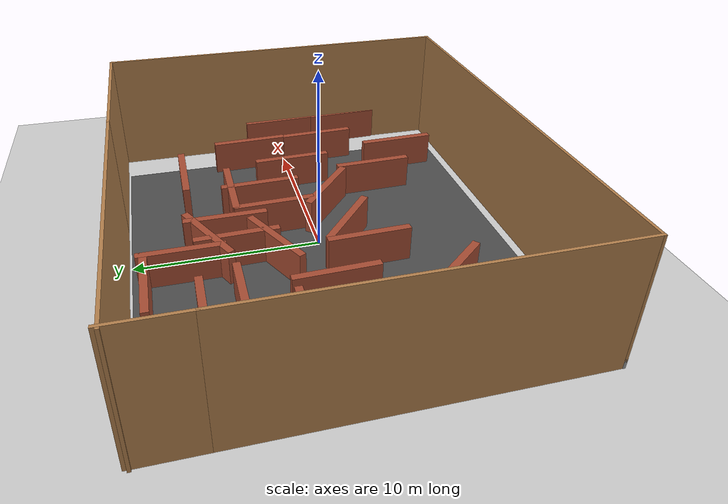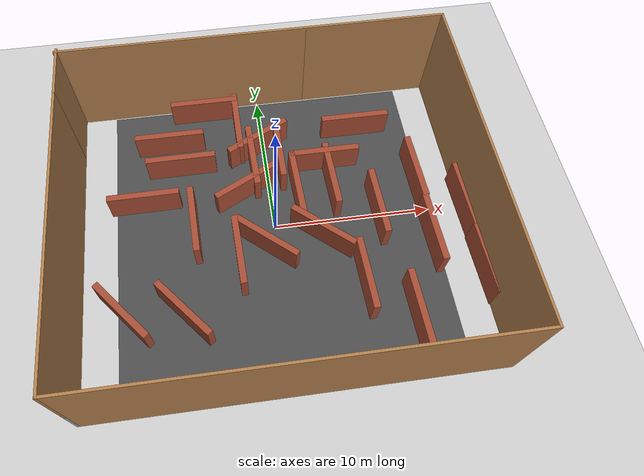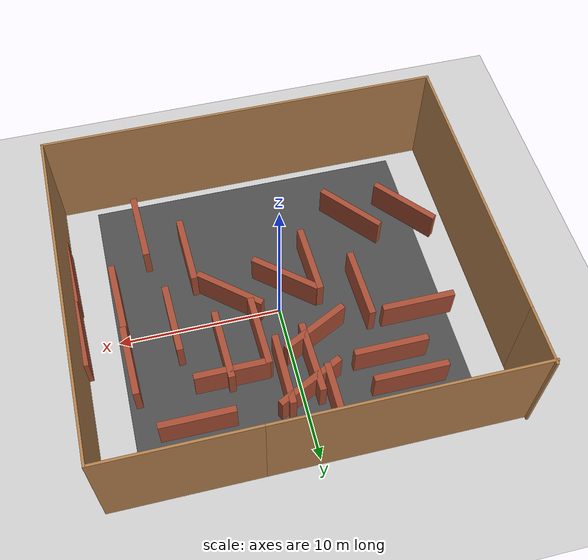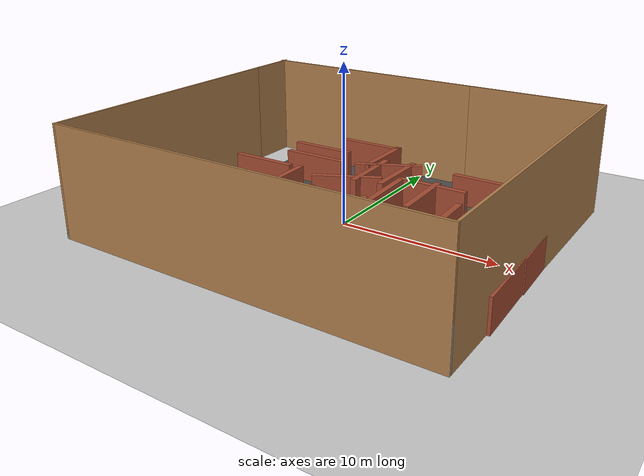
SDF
<sdf version="1.6">
 <world name="default">
  <light name="sun" type="directional">
   <pose>0 0 10 0 -0 0</pose>
   <diffuse>0.8 0.8 0.8 1</diffuse>
   <specular>0.2 0.2 0.2 1</specular>
   <attenuation>
    <range>1000</range>
    <constant>0.9</constant>
    <linear>0.01</linear>
    <quadratic>0.001</quadratic>
   </attenuation>
   <direction>-0.5 0.1 -0.9</direction>
  </light>
  <model name="ground_plane">
   <static>1</static>
   <link name="link">
    <collision name="collision">
     <geometry><plane><normal>0 0 1</normal><size>100 100</size></plane></geometry>
     <surface><friction><ode><mu>100</mu><mu2>50</mu2></ode></friction></surface>
    </collision>
    <visual name="visual">
     <cast_shadows>0</cast_shadows>
     <geometry><plane><normal>0 0 1</normal><size>100 100</size></plane></geometry>
     <material>
      <script><uri>file://media/materials/scripts/gazebo.material</uri><name>Gazebo/Grey</name></script>
     </material>
    </visual>
   </link>
  </model>
  <model name="asphalt_plane">
   <static>1</static>
   <link name="link">
    <collision name="collision"><geometry><box><size>20 20 0.1</size></box></geometry></collision>
    <visual name="visual">
     <cast_shadows>0</cast_shadows>
     <geometry><box><size>20 20 0.1</size></box></geometry>
     <material>
      <script>
       <uri>model://asphalt_plane/materials/scripts</uri>
       <uri>model://asphalt_plane/materials/textures</uri>
       <name>vrc/asphalt</name>
      </script>
     </material>
    </visual>
   </link>
  </model>
  <physics name="default_physics" default="0" type="ode">
   <ode>
    <solver>
     <type>quick</type>
     <iters>10</iters>
     <sor>1.3</sor>
     <use_dynamic_moi_rescaling>0</use_dynamic_moi_rescaling>
    </solver>
    <constraints>
     <cfm>0</cfm>
     <erp>0.2</erp>
     <contact_max_correcting_vel>100</contact_max_correcting_vel>
     <contact_surface_layer>0.001</contact_surface_layer>
    </constraints>
   </ode>
   <max_step_size>0.004</max_step_size>
   <real_time_factor>1</real_time_factor>
   <real_time_update_rate>250</real_time_update_rate>
  </physics>
  <gravity>0 0 -9.8066</gravity>
  <magnetic_field>6e-06 2.3e-05 -4.2e-05</magnetic_field>
  <atmosphere type="adiabatic"/>
  <scene><ambient>0.4 0.4 0.4 1</ambient><background>0.7 0.7 0.7 1</background><shadows>1</shadows></scene>
  <spherical_coordinates>
   <surface_model>EARTH_WGS84</surface_model>
   <latitude_deg>0</latitude_deg>
   <longitude_deg>0</longitude_deg>
   <elevation>0</elevation>
   <heading_deg>0</heading_deg>
  </spherical_coordinates>
  <model name="A_walls">
   <pose>3.82989 4.22347 0 0 -0 0</pose>
   <link name="Wall_1">
    <collision name="Wall_1_Collision">
     <geometry><box><size>4.5 0.4 2</size></box></geometry>
     <pose>0 0 1 0 -0 0</pose>
    </collision>
    <visual name="Wall_1_Visual">
     <pose>0 0 1 0 -0 0</pose>
     <geometry><box><size>4.5 0.4 2</size></box></geometry>
     <material>
      <script><uri>file://media/materials/scripts/gazebo.material</uri><name>Gazebo/Bricks</name></script>
      <ambient>1 1 1 1</ambient>
     </material>
     <meta><layer>0</layer></meta>
    </visual>
   </link>
   <link name="Wall_2">
    <collision name="Wall_2_Collision">
     <geometry><box><size>4.5 0.4 2</size></box></geometry>
     <pose>0 0 1 0 -0 0</pose>
    </collision>
    <visual name="Wall_2_Visual">
     <pose>0 0 1 0 -0 0</pose>
     <geometry><box><size>4.5 0.4 2</size></box></geometry>
     <material>
      <script><uri>file://media/materials/scripts/gazebo.material</uri><name>Gazebo/Bricks</name></script>
      <ambient>1 1 1 1</ambient>
     </material>
     <meta><layer>0</layer></meta>
    </visual>
    <pose>2.5 2.5 0 0 -0 0</pose>
   </link>
   <static>1</static>
  </model>
  <model name="wall_all">
   <pose>-0.0773 -0.08909 0 0 -0 0</pose>
   <link name="Wall_10">
    <collision name="Wall_10_Collision">
     <geometry><box><size>17.75 0.15 7</size></box></geometry>
     <pose>0 0 3.5 0 -0 0</pose>
    </collision>
    <visual name="Wall_10_Visual">
     <pose>0 0 3.5 0 -0 0</pose>
     <geometry><box><size>17.75 0.15 7</size></box></geometry>
     <material>
      <script><uri>file://media/materials/scripts/gazebo.material</uri><name>Gazebo/Wood</name></script>
      <ambient>1 1 1 1</ambient>
     </material>
     <meta><layer>0</layer></meta>
    </visual>
    <pose>-12.115 -1.675 0 0 -0 1.5708</pose>
   </link>
   <link name="Wall_11">
    <collision name="Wall_11_Collision">
     <geometry><box><size>3.5 0.15 7</size></box></geometry>
     <pose>0 0 3.5 0 -0 0</pose>
    </collision>
    <visual name="Wall_11_Visual">
     <pose>0 0 3.5 0 -0 0</pose>
     <geometry><box><size>3.5 0.15 7</size></box></geometry>
     <material>
      <script><uri>file://media/materials/scripts/gazebo.material</uri><name>Gazebo/Wood</name></script>
      <ambient>1 1 1 1</ambient>
     </material>
     <meta><layer>0</layer></meta>
    </visual>
    <pose>-12.115 8.8 0 0 -0 1.5708</pose>
   </link>
   <link name="Wall_2">
    <collision name="Wall_2_Collision">
     <geometry><box><size>15.703 0.15 7</size></box></geometry>
     <pose>0 0 3.5 0 -0 0</pose>
    </collision>
    <visual name="Wall_2_Visual">
     <pose>0 0 3.5 0 -0 0</pose>
     <geometry><box><size>15.703 0.15 7</size></box></geometry>
     <material>
      <script><uri>file://media/materials/scripts/gazebo.material</uri><name>Gazebo/Wood</name></script>
      <ambient>1 1 1 1</ambient>
     </material>
     <meta><layer>0</layer></meta>
    </visual>
    <pose>-4.4485 10.297 0 0 -0 3.14159</pose>
   </link>
   <link name="Wall_5">
    <collision name="Wall_5_Collision">
     <geometry><box><size>9.04652 0.15 7</size></box></geometry>
     <pose>0 0 3.5 0 -0 0</pose>
    </collision>
    <visual name="Wall_5_Visual">
     <pose>0 0 3.5 0 -0 0</pose>
     <geometry><box><size>9.04652 0.15 7</size></box></geometry>
     <material>
      <script><uri>file://media/materials/scripts/gazebo.material</uri><name>Gazebo/Wood</name></script>
      <ambient>1 1 1 1</ambient>
     </material>
     <meta><layer>0</layer></meta>
    </visual>
    <pose>7.7765 10.297 0 0 -0 0</pose>
   </link>
   <link name="Wall_6">
    <collision name="Wall_6_Collision">
     <geometry><box><size>20.9219 0.15 7</size></box></geometry>
     <pose>0 0 3.5 0 -0 0</pose>
    </collision>
    <visual name="Wall_6_Visual">
     <pose>0 0 3.5 0 -0 0</pose>
     <geometry><box><size>20.9219 0.15 7</size></box></geometry>
     <material>
      <script><uri>file://media/materials/scripts/gazebo.material</uri><name>Gazebo/Wood</name></script>
      <ambient>1 1 1 1</ambient>
     </material>
     <meta><layer>0</layer></meta>
    </visual>
    <pose>12.225 -0.089 0 0 -0 -1.5708</pose>
   </link>
   <link name="Wall_7">
    <collision name="Wall_7_Collision">
     <geometry><box><size>0.15 0.15 2.5</size></box></geometry>
     <pose>0 0 1.25 0 -0 0</pose>
    </collision>
    <visual name="Wall_7_Visual">
     <pose>0 0 1.25 0 -0 0</pose>
     <geometry><box><size>0.15 0.15 2.5</size></box></geometry>
     <material>
      <script><uri>file://media/materials/scripts/gazebo.material</uri><name>Gazebo/Grey</name></script>
      <ambient>1 1 1 1</ambient>
     </material>
     <meta><layer>0</layer></meta>
    </visual>
    <pose>12.225 -10.475 0 0 -0 0</pose>
   </link>
   <link name="Wall_8">
    <collision name="Wall_8_Collision">
     <geometry><box><size>24.5 0.15 7</size></box></geometry>
     <pose>0 0 3.5 0 -0 0</pose>
    </collision>
    <visual name="Wall_8_Visual">
     <pose>0 0 3.5 0 -0 0</pose>
     <geometry><box><size>24.5 0.15 7</size></box></geometry>
     <material>
      <script><uri>file://media/materials/scripts/gazebo.material</uri><name>Gazebo/Wood</name></script>
      <ambient>1 1 1 1</ambient>
     </material>
     <meta><layer>0</layer></meta>
    </visual>
    <pose>0.049999 -10.475 0 0 -0 3.14159</pose>
   </link>
   <link name="Wall_9">
    <collision name="Wall_9_Collision">
     <geometry><box><size>0.16 0.15 2.5</size></box></geometry>
     <pose>0 0 1.25 0 -0 0</pose>
    </collision>
    <visual name="Wall_9_Visual">
     <pose>0 0 1.25 0 -0 0</pose>
     <geometry><box><size>0.16 0.15 2.5</size></box></geometry>
     <material>
      <script><uri>file://media/materials/scripts/gazebo.material</uri><name>Gazebo/Grey</name></script>
      <ambient>1 1 1 1</ambient>
     </material>
     <meta><layer>0</layer></meta>
    </visual>
    <pose>-12.12 -10.475 0 0 -0 0</pose>
   </link>
   <static>1</static>
  </model>
  <model name="A_walls_clone">
   <pose>4 2.52308 0 0 0 -1.53995</pose>
   <link name="Wall_1">
    <collision name="Wall_1_Collision">
     <geometry><box><size>4.5 0.4 2</size></box></geometry>
     <pose>0 0 1 0 -0 0</pose>
    </collision>
    <visual name="Wall_1_Visual">
     <pose>0 0 1 0 -0 0</pose>
     <geometry><box><size>4.5 0.4 2</size></box></geometry>
     <material>
      <script><uri>file://media/materials/scripts/gazebo.material</uri><name>Gazebo/Bricks</name></script>
      <ambient>1 1 1 1</ambient>
     </material>
     <meta><layer>0</layer></meta>
    </visual>
   </link>
   <link name="Wall_2">
    <collision name="Wall_2_Collision">
     <geometry><box><size>4.5 0.4 2</size></box></geometry>
     <pose>0 0 1 0 -0 0</pose>
    </collision>
    <visual name="Wall_2_Visual">
     <pose>0 0 1 0 -0 0</pose>
     <geometry><box><size>4.5 0.4 2</size></box></geometry>
     <material>
      <script><uri>file://media/materials/scripts/gazebo.material</uri><name>Gazebo/Bricks</name></script>
      <ambient>1 1 1 1</ambient>
     </material>
     <meta><layer>0</layer></meta>
    </visual>
    <pose>2.5 2.5 0 0 -0 0</pose>
   </link>
   <static>1</static>
  </model>
  <model name="A_walls_clone_clone">
   <pose>-0.868801 4.53071 0 0 0 -1.53995</pose>
   <link name="Wall_1">
    <collision name="Wall_1_Collision">
     <geometry><box><size>4.5 0.4 2</size></box></geometry>
     <pose>0 0 1 0 -0 0</pose>
    </collision>
    <visual name="Wall_1_Visual">
     <pose>0 0 1 0 -0 0</pose>
     <geometry><box><size>4.5 0.4 2</size></box></geometry>
     <material>
      <script><uri>file://media/materials/scripts/gazebo.material</uri><name>Gazebo/Bricks</name></script>
      <ambient>1 1 1 1</ambient>
     </material>
     <meta><layer>0</layer></meta>
    </visual>
   </link>
   <link name="Wall_2">
    <collision name="Wall_2_Collision">
     <geometry><box><size>4.5 0.4 2</size></box></geometry>
     <pose>0 0 1 0 -0 0</pose>
    </collision>
    <visual name="Wall_2_Visual">
     <pose>0 0 1 0 -0 0</pose>
     <geometry><box><size>4.5 0.4 2</size></box></geometry>
     <material>
      <script><uri>file://media/materials/scripts/gazebo.material</uri><name>Gazebo/Bricks</name></script>
      <ambient>1 1 1 1</ambient>
     </material>
     <meta><layer>0</layer></meta>
    </visual>
    <pose>2.5 2.5 0 0 -0 0</pose>
   </link>
   <static>1</static>
  </model>
  <model name="A_walls_clone_clone_0">
   <pose>2.82027 -1.14839 0 0 -0 2.43162</pose>
   <link name="Wall_1">
    <collision name="Wall_1_Collision">
     <geometry><box><size>4.5 0.4 2</size></box></geometry>
     <pose>0 0 1 0 -0 0</pose>
    </collision>
    <visual name="Wall_1_Visual">
     <pose>0 0 1 0 -0 0</pose>
     <geometry><box><size>4.5 0.4 2</size></box></geometry>
     <material>
      <script><uri>file://media/materials/scripts/gazebo.material</uri><name>Gazebo/Bricks</name></script>
      <ambient>1 1 1 1</ambient>
     </material>
     <meta><layer>0</layer></meta>
    </visual>
   </link>
   <link name="Wall_2">
    <collision name="Wall_2_Collision">
     <geometry><box><size>4.5 0.4 2</size></box></geometry>
     <pose>0 0 1 0 -0 0</pose>
    </collision>
    <visual name="Wall_2_Visual">
     <pose>0 0 1 0 -0 0</pose>
     <geometry><box><size>4.5 0.4 2</size></box></geometry>
     <material>
      <script><uri>file://media/materials/scripts/gazebo.material</uri><name>Gazebo/Bricks</name></script>
      <ambient>1 1 1 1</ambient>
     </material>
     <meta><layer>0</layer></meta>
    </visual>
    <pose>2.5 2.5 0 0 -0 0</pose>
   </link>
   <static>1</static>
  </model>
  <model name="A_walls_clone_clone_1">
   <pose>4.85398 -4.5624 0 0 0 -1.53995</pose>
   <link name="Wall_1">
    <collision name="Wall_1_Collision">
     <geometry><box><size>4.5 0.4 2</size></box></geometry>
     <pose>0 0 1 0 -0 0</pose>
    </collision>
    <visual name="Wall_1_Visual">
     <pose>0 0 1 0 -0 0</pose>
     <geometry><box><size>4.5 0.4 2</size></box></geometry>
     <material>
      <script><uri>file://media/materials/scripts/gazebo.material</uri><name>Gazebo/Bricks</name></script>
      <ambient>1 1 1 1</ambient>
     </material>
     <meta><layer>0</layer></meta>
    </visual>
   </link>
   <link name="Wall_2">
    <collision name="Wall_2_Collision">
     <geometry><box><size>4.5 0.4 2</size></box></geometry>
     <pose>0 0 1 0 -0 0</pose>
    </collision>
    <visual name="Wall_2_Visual">
     <pose>0 0 1 0 -0 0</pose>
     <geometry><box><size>4.5 0.4 2</size></box></geometry>
     <material>
      <script><uri>file://media/materials/scripts/gazebo.material</uri><name>Gazebo/Bricks</name></script>
      <ambient>1 1 1 1</ambient>
     </material>
     <meta><layer>0</layer></meta>
    </visual>
    <pose>2.5 2.5 0 0 -0 0</pose>
   </link>
   <static>1</static>
  </model>
  <model name="A_walls_clone_clone_2">
   <pose>9.55482 -2.15422 0 0 0 -1.53995</pose>
   <link name="Wall_1">
    <collision name="Wall_1_Collision">
     <geometry><box><size>4.5 0.4 2</size></box></geometry>
     <pose>0 0 1 0 -0 0</pose>
    </collision>
    <visual name="Wall_1_Visual">
     <pose>0 0 1 0 -0 0</pose>
     <geometry><box><size>4.5 0.4 2</size></box></geometry>
     <material>
      <script><uri>file://media/materials/scripts/gazebo.material</uri><name>Gazebo/Bricks</name></script>
      <ambient>1 1 1 1</ambient>
     </material>
     <meta><layer>0</layer></meta>
    </visual>
   </link>
   <link name="Wall_2">
    <collision name="Wall_2_Collision">
     <geometry><box><size>4.5 0.4 2</size></box></geometry>
     <pose>0 0 1 0 -0 0</pose>
    </collision>
    <visual name="Wall_2_Visual">
     <pose>0 0 1 0 -0 0</pose>
     <geometry><box><size>4.5 0.4 2</size></box></geometry>
     <material>
      <script><uri>file://media/materials/scripts/gazebo.material</uri><name>Gazebo/Bricks</name></script>
      <ambient>1 1 1 1</ambient>
     </material>
     <meta><layer>0</layer></meta>
    </visual>
    <pose>2.5 2.5 0 0 -0 0</pose>
   </link>
   <static>1</static>
  </model>
  <model name="A_walls_clone_clone_3">
   <pose>9.47773 2.2861 0 0 0 -1.53995</pose>
   <link name="Wall_1">
    <collision name="Wall_1_Collision">
     <geometry><box><size>4.5 0.4 2</size></box></geometry>
     <pose>0 0 1 0 -0 0</pose>
    </collision>
    <visual name="Wall_1_Visual">
     <pose>0 0 1 0 -0 0</pose>
     <geometry><box><size>4.5 0.4 2</size></box></geometry>
     <material>
      <script><uri>file://media/materials/scripts/gazebo.material</uri><name>Gazebo/Bricks</name></script>
      <ambient>1 1 1 1</ambient>
     </material>
     <meta><layer>0</layer></meta>
    </visual>
   </link>
   <link name="Wall_2">
    <collision name="Wall_2_Collision">
     <geometry><box><size>4.5 0.4 2</size></box></geometry>
     <pose>0 0 1 0 -0 0</pose>
    </collision>
    <visual name="Wall_2_Visual">
     <pose>0 0 1 0 -0 0</pose>
     <geometry><box><size>4.5 0.4 2</size></box></geometry>
     <material>
      <script><uri>file://media/materials/scripts/gazebo.material</uri><name>Gazebo/Bricks</name></script>
      <ambient>1 1 1 1</ambient>
     </material>
     <meta><layer>0</layer></meta>
    </visual>
    <pose>2.5 2.5 0 0 -0 0</pose>
   </link>
   <static>1</static>
  </model>
  <model name="A_walls_clone_clone_4">
   <pose>-3.68864 9.26956 0 0 0 -3.14096</pose>
   <link name="Wall_1">
    <collision name="Wall_1_Collision">
     <geometry><box><size>4.5 0.4 2</size></box></geometry>
     <pose>0 0 1 0 -0 0</pose>
    </collision>
    <visual name="Wall_1_Visual">
     <pose>0 0 1 0 -0 0</pose>
     <geometry><box><size>4.5 0.4 2</size></box></geometry>
     <material>
      <script><uri>file://media/materials/scripts/gazebo.material</uri><name>Gazebo/Bricks</name></script>
      <ambient>1 1 1 1</ambient>
     </material>
     <meta><layer>0</layer></meta>
    </visual>
   </link>
   <link name="Wall_2">
    <collision name="Wall_2_Collision">
     <geometry><box><size>4.5 0.4 2</size></box></geometry>
     <pose>0 0 1 0 -0 0</pose>
    </collision>
    <visual name="Wall_2_Visual">
     <pose>0 0 1 0 -0 0</pose>
     <geometry><box><size>4.5 0.4 2</size></box></geometry>
     <material>
      <script><uri>file://media/materials/scripts/gazebo.material</uri><name>Gazebo/Bricks</name></script>
      <ambient>1 1 1 1</ambient>
     </material>
     <meta><layer>0</layer></meta>
    </visual>
    <pose>2.5 2.5 0 0 -0 0</pose>
   </link>
   <static>1</static>
  </model>
  <model name="A_walls_clone_clone_5">
   <pose>-5.03502 0.33614 0 0 0 -1.53995</pose>
   <link name="Wall_1">
    <collision name="Wall_1_Collision">
     <geometry><box><size>4.5 0.4 2</size></box></geometry>
     <pose>0 0 1 0 -0 0</pose>
    </collision>
    <visual name="Wall_1_Visual">
     <pose>0 0 1 0 -0 0</pose>
     <geometry><box><size>4.5 0.4 2</size></box></geometry>
     <material>
      <script><uri>file://media/materials/scripts/gazebo.material</uri><name>Gazebo/Bricks</name></script>
      <ambient>1 1 1 1</ambient>
     </material>
     <meta><layer>0</layer></meta>
    </visual>
   </link>
   <link name="Wall_2">
    <collision name="Wall_2_Collision">
     <geometry><box><size>4.5 0.4 2</size></box></geometry>
     <pose>0 0 1 0 -0 0</pose>
    </collision>
    <visual name="Wall_2_Visual">
     <pose>0 0 1 0 -0 0</pose>
     <geometry><box><size>4.5 0.4 2</size></box></geometry>
     <material>
      <script><uri>file://media/materials/scripts/gazebo.material</uri><name>Gazebo/Bricks</name></script>
      <ambient>1 1 1 1</ambient>
     </material>
     <meta><layer>0</layer></meta>
    </visual>
    <pose>2.5 2.5 0 0 -0 0</pose>
   </link>
   <static>1</static>
  </model>
  <model name="A_walls_clone_clone_6">
   <pose>-5.55551 4.89438 0 0 0 -3.13671</pose>
   <link name="Wall_1">
    <collision name="Wall_1_Collision">
     <geometry><box><size>4.5 0.4 2</size></box></geometry>
     <pose>0 0 1 0 -0 0</pose>
    </collision>
    <visual name="Wall_1_Visual">
     <pose>0 0 1 0 -0 0</pose>
     <geometry><box><size>4.5 0.4 2</size></box></geometry>
     <material>
      <script><uri>file://media/materials/scripts/gazebo.material</uri><name>Gazebo/Bricks</name></script>
      <ambient>1 1 1 1</ambient>
     </material>
     <meta><layer>0</layer></meta>
    </visual>
   </link>
   <link name="Wall_2">
    <collision name="Wall_2_Collision">
     <geometry><box><size>4.5 0.4 2</size></box></geometry>
     <pose>0 0 1 0 -0 0</pose>
    </collision>
    <visual name="Wall_2_Visual">
     <pose>0 0 1 0 -0 0</pose>
     <geometry><box><size>4.5 0.4 2</size></box></geometry>
     <material>
      <script><uri>file://media/materials/scripts/gazebo.material</uri><name>Gazebo/Bricks</name></script>
      <ambient>1 1 1 1</ambient>
     </material>
     <meta><layer>0</layer></meta>
    </visual>
    <pose>2.5 2.5 0 0 -0 0</pose>
   </link>
   <static>1</static>
  </model>
  <model name="A_walls_clone_clone_7">
   <pose>-5.9986 -5.3149 0 0 -0 2.26495</pose>
   <link name="Wall_1">
    <collision name="Wall_1_Collision">
     <geometry><box><size>4.5 0.4 2</size></box></geometry>
     <pose>0 0 1 0 -0 0</pose>
    </collision>
    <visual name="Wall_1_Visual">
     <pose>0 0 1 0 -0 0</pose>
     <geometry><box><size>4.5 0.4 2</size></box></geometry>
     <material>
      <script><uri>file://media/materials/scripts/gazebo.material</uri><name>Gazebo/Bricks</name></script>
      <ambient>1 1 1 1</ambient>
     </material>
     <meta><layer>0</layer></meta>
    </visual>
   </link>
   <link name="Wall_2">
    <collision name="Wall_2_Collision">
     <geometry><box><size>4.5 0.4 2</size></box></geometry>
     <pose>0 0 1 0 -0 0</pose>
    </collision>
    <visual name="Wall_2_Visual">
     <pose>0 0 1 0 -0 0</pose>
     <geometry><box><size>4.5 0.4 2</size></box></geometry>
     <material>
      <script><uri>file://media/materials/scripts/gazebo.material</uri><name>Gazebo/Bricks</name></script>
      <ambient>1 1 1 1</ambient>
     </material>
     <meta><layer>0</layer></meta>
    </visual>
    <pose>2.5 2.5 0 0 -0 0</pose>
   </link>
   <static>1</static>
  </model>
  <model name="A_walls_clone_clone_clone">
   <pose>-0.379959 6.00942 0 0 0 -2.68016</pose>
   <link name="Wall_1">
    <collision name="Wall_1_Collision">
     <geometry><box><size>4.5 0.4 2</size></box></geometry>
     <pose>0 0 1 0 -0 0</pose>
    </collision>
    <visual name="Wall_1_Visual">
     <pose>0 0 1 0 -0 0</pose>
     <geometry><box><size>4.5 0.4 2</size></box></geometry>
     <material>
      <script><uri>file://media/materials/scripts/gazebo.material</uri><name>Gazebo/Bricks</name></script>
      <ambient>1 1 1 1</ambient>
     </material>
     <meta><layer>0</layer></meta>
    </visual>
   </link>
   <link name="Wall_2">
    <collision name="Wall_2_Collision">
     <geometry><box><size>4.5 0.4 2</size></box></geometry>
     <pose>0 0 1 0 -0 0</pose>
    </collision>
    <visual name="Wall_2_Visual">
     <pose>0 0 1 0 -0 0</pose>
     <geometry><box><size>4.5 0.4 2</size></box></geometry>
     <material>
      <script><uri>file://media/materials/scripts/gazebo.material</uri><name>Gazebo/Bricks</name></script>
      <ambient>1 1 1 1</ambient>
     </material>
     <meta><layer>0</layer></meta>
    </visual>
    <pose>2.5 2.5 0 0 -0 0</pose>
   </link>
   <static>1</static>
  </model>
  <model name="A_walls_clone_clone_clone_clone">
   <pose>-1.59587 7.40147 0 0 0 -1.56589</pose>
   <link name="Wall_1">
    <collision name="Wall_1_Collision">
     <geometry><box><size>4.5 0.4 2</size></box></geometry>
     <pose>0 0 1 0 -0 0</pose>
    </collision>
    <visual name="Wall_1_Visual">
     <pose>0 0 1 0 -0 0</pose>
     <geometry><box><size>4.5 0.4 2</size></box></geometry>
     <material>
      <script><uri>file://media/materials/scripts/gazebo.material</uri><name>Gazebo/Bricks</name></script>
      <ambient>1 1 1 1</ambient>
     </material>
     <meta><layer>0</layer></meta>
    </visual>
   </link>
   <link name="Wall_2">
    <collision name="Wall_2_Collision">
     <geometry><box><size>4.5 0.4 2</size></box></geometry>
     <pose>0 0 1 0 -0 0</pose>
    </collision>
    <visual name="Wall_2_Visual">
     <pose>0 0 1 0 -0 0</pose>
     <geometry><box><size>4.5 0.4 2</size></box></geometry>
     <material>
      <script><uri>file://media/materials/scripts/gazebo.material</uri><name>Gazebo/Bricks</name></script>
      <ambient>1 1 1 1</ambient>
     </material>
     <meta><layer>0</layer></meta>
    </visual>
    <pose>2.5 2.5 0 0 -0 0</pose>
   </link>
   <static>1</static>
  </model>
 </world>
</sdf>
